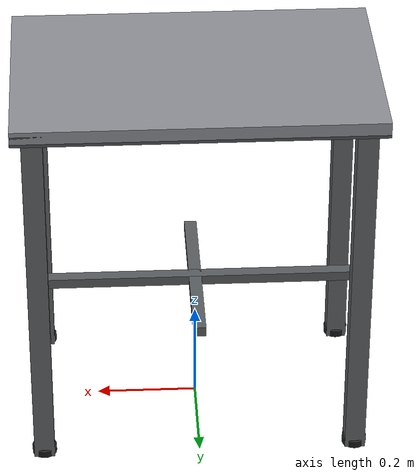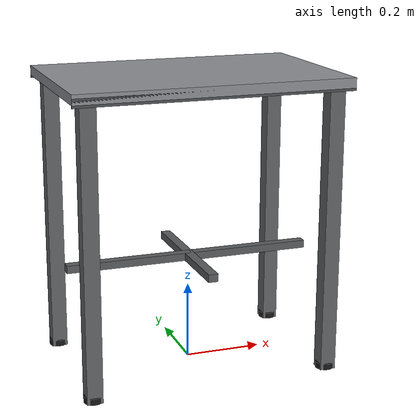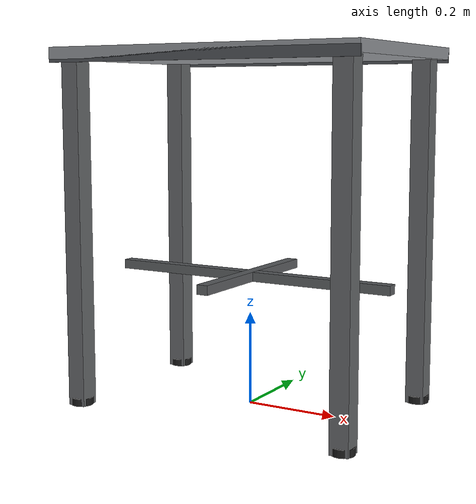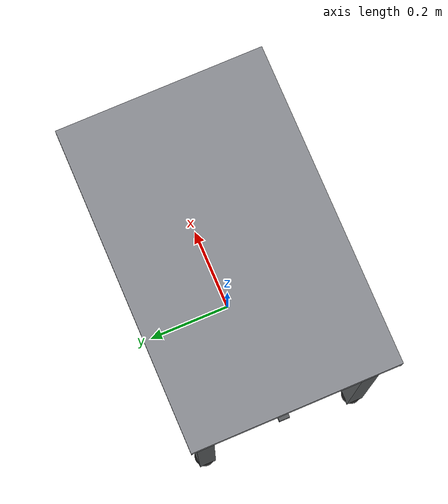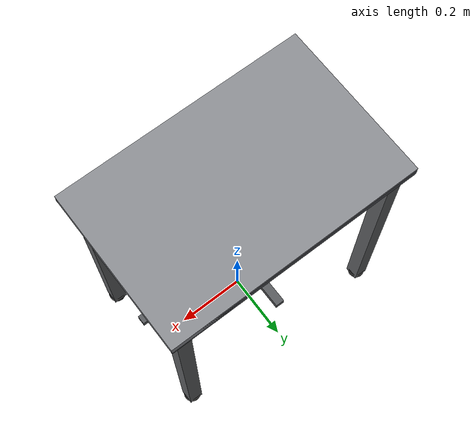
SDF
<?xml version="1.0" ?>
<sdf version="1.6">
  <model name="industrial_table">
    <static>true</static>

    <!-- ══ TABLETOP ══ -->
    <link name="tabletop">
      <pose>0 0 0.748 0 0 0</pose>

      <visual name="top_visual">
        <geometry>
          <box>
            <size>0.70 0.45 0.025</size>
          </box>
        </geometry>
        <material>
          <!-- Brushed steel — dark silver -->
          <ambient>0.45 0.46 0.48 1.0</ambient>
          <diffuse>0.55 0.56 0.58 1.0</diffuse>
          <specular>0.85 0.85 0.85 1.0</specular>
          <emissive>0.0 0.0 0.0 0.0</emissive>
        </material>
      </visual>

      <!-- Tabletop edge rim (darker frame) -->
      <visual name="rim_front">
        <pose>0 -0.223 -0.008 0 0 0</pose>
        <geometry>
          <box>
            <size>0.70 0.004 0.022</size>
          </box>
        </geometry>
        <material>
          <ambient>0.25 0.26 0.28 1.0</ambient>
          <diffuse>0.30 0.31 0.33 1.0</diffuse>
          <specular>0.6 0.6 0.6 1.0</specular>
        </material>
      </visual>
      <visual name="rim_back">
        <pose>0 0.223 -0.008 0 0 0</pose>
        <geometry>
          <box>
            <size>0.70 0.004 0.022</size>
          </box>
        </geometry>
        <material>
          <ambient>0.25 0.26 0.28 1.0</ambient>
          <diffuse>0.30 0.31 0.33 1.0</diffuse>
          <specular>0.6 0.6 0.6 1.0</specular>
        </material>
      </visual>

      <collision name="top_collision">
        <geometry>
          <box>
            <size>0.70 0.45 0.025</size>
          </box>
        </geometry>
        <surface>
          <friction>
            <ode>
              <mu>0.6</mu>
              <mu2>0.6</mu2>
            </ode>
          </friction>
        </surface>
      </collision>
    </link>

    <!-- ══ LEG: Front-Left ══ -->
    <link name="leg_fl">
      <pose>-0.31 -0.19 0.368 0 0 0</pose>
      <visual name="leg_fl_visual">
        <geometry>
          <box><size>0.040 0.040 0.735</size></box>
        </geometry>
        <material>
          <ambient>0.30 0.31 0.32 1.0</ambient>
          <diffuse>0.38 0.39 0.40 1.0</diffuse>
          <specular>0.7 0.7 0.7 1.0</specular>
        </material>
      </visual>
      <collision name="leg_fl_col">
        <geometry><box><size>0.040 0.040 0.735</size></box></geometry>
      </collision>
    </link>

    <!-- ══ LEG: Front-Right ══ -->
    <link name="leg_fr">
      <pose>0.31 -0.19 0.368 0 0 0</pose>
      <visual name="leg_fr_visual">
        <geometry>
          <box><size>0.040 0.040 0.735</size></box>
        </geometry>
        <material>
          <ambient>0.30 0.31 0.32 1.0</ambient>
          <diffuse>0.38 0.39 0.40 1.0</diffuse>
          <specular>0.7 0.7 0.7 1.0</specular>
        </material>
      </visual>
      <collision name="leg_fr_col">
        <geometry><box><size>0.040 0.040 0.735</size></box></geometry>
      </collision>
    </link>

    <!-- ══ LEG: Back-Left ══ -->
    <link name="leg_bl">
      <pose>-0.31 0.19 0.368 0 0 0</pose>
      <visual name="leg_bl_visual">
        <geometry>
          <box><size>0.040 0.040 0.735</size></box>
        </geometry>
        <material>
          <ambient>0.30 0.31 0.32 1.0</ambient>
          <diffuse>0.38 0.39 0.40 1.0</diffuse>
          <specular>0.7 0.7 0.7 1.0</specular>
        </material>
      </visual>
      <collision name="leg_bl_col">
        <geometry><box><size>0.040 0.040 0.735</size></box></geometry>
      </collision>
    </link>

    <!-- ══ LEG: Back-Right ══ -->
    <link name="leg_br">
      <pose>0.31 0.19 0.368 0 0 0</pose>
      <visual name="leg_br_visual">
        <geometry>
          <box><size>0.040 0.040 0.735</size></box>
        </geometry>
        <material>
          <ambient>0.30 0.31 0.32 1.0</ambient>
          <diffuse>0.38 0.39 0.40 1.0</diffuse>
          <specular>0.7 0.7 0.7 1.0</specular>
        </material>
      </visual>
      <collision name="leg_br_col">
        <geometry><box><size>0.040 0.040 0.735</size></box></geometry>
      </collision>
    </link>

    <!-- ══ CROSS BRACE (lower shelf support) ══ -->
    <link name="brace_x">
      <pose>0 0 0.28 0 0 0</pose>
      <visual name="brace_x_visual">
        <geometry>
          <box><size>0.650 0.025 0.020</size></box>
        </geometry>
        <material>
          <ambient>0.28 0.29 0.30 1.0</ambient>
          <diffuse>0.35 0.36 0.37 1.0</diffuse>
          <specular>0.5 0.5 0.5 1.0</specular>
        </material>
      </visual>
      <collision name="brace_x_col">
        <geometry><box><size>0.650 0.025 0.020</size></box></geometry>
      </collision>
    </link>

    <link name="brace_y">
      <pose>0 0 0.28 0 0 0</pose>
      <visual name="brace_y_visual">
        <geometry>
          <box><size>0.025 0.380 0.020</size></box>
        </geometry>
        <material>
          <ambient>0.28 0.29 0.30 1.0</ambient>
          <diffuse>0.35 0.36 0.37 1.0</diffuse>
          <specular>0.5 0.5 0.5 1.0</specular>
        </material>
      </visual>
      <collision name="brace_y_col">
        <geometry><box><size>0.025 0.380 0.020</size></box></geometry>
      </collision>
    </link>

    <!-- ══ RUBBER FEET ══ -->
    <link name="foot_fl">
      <pose>-0.31 -0.19 0.008 0 0 0</pose>
      <visual name="foot_fl_v">
        <geometry><cylinder><radius>0.024</radius><length>0.016</length></cylinder></geometry>
        <material>
          <ambient>0.08 0.08 0.08 1.0</ambient>
          <diffuse>0.10 0.10 0.10 1.0</diffuse>
          <specular>0.05 0.05 0.05 1.0</specular>
        </material>
      </visual>
    </link>
    <link name="foot_fr">
      <pose>0.31 -0.19 0.008 0 0 0</pose>
      <visual name="foot_fr_v">
        <geometry><cylinder><radius>0.024</radius><length>0.016</length></cylinder></geometry>
        <material>
          <ambient>0.08 0.08 0.08 1.0</ambient>
          <diffuse>0.10 0.10 0.10 1.0</diffuse>
          <specular>0.05 0.05 0.05 1.0</specular>
        </material>
      </visual>
    </link>
    <link name="foot_bl">
      <pose>-0.31 0.19 0.008 0 0 0</pose>
      <visual name="foot_bl_v">
        <geometry><cylinder><radius>0.024</radius><length>0.016</length></cylinder></geometry>
        <material>
          <ambient>0.08 0.08 0.08 1.0</ambient>
          <diffuse>0.10 0.10 0.10 1.0</diffuse>
          <specular>0.05 0.05 0.05 1.0</specular>
        </material>
      </visual>
    </link>
    <link name="foot_br">
      <pose>0.31 0.19 0.008 0 0 0</pose>
      <visual name="foot_br_v">
        <geometry><cylinder><radius>0.024</radius><length>0.016</length></cylinder></geometry>
        <material>
          <ambient>0.08 0.08 0.08 1.0</ambient>
          <diffuse>0.10 0.10 0.10 1.0</diffuse>
          <specular>0.05 0.05 0.05 1.0</specular>
        </material>
      </visual>
    </link>

  </model>
</sdf>
